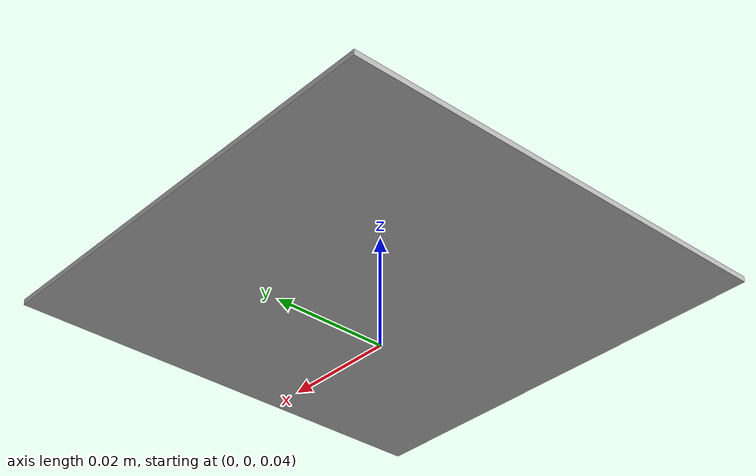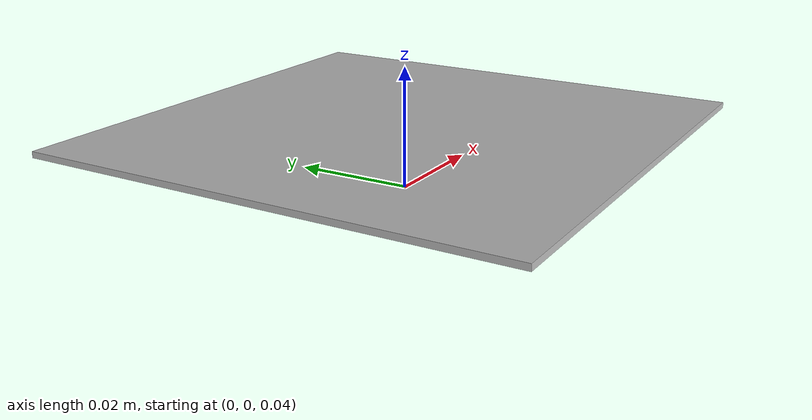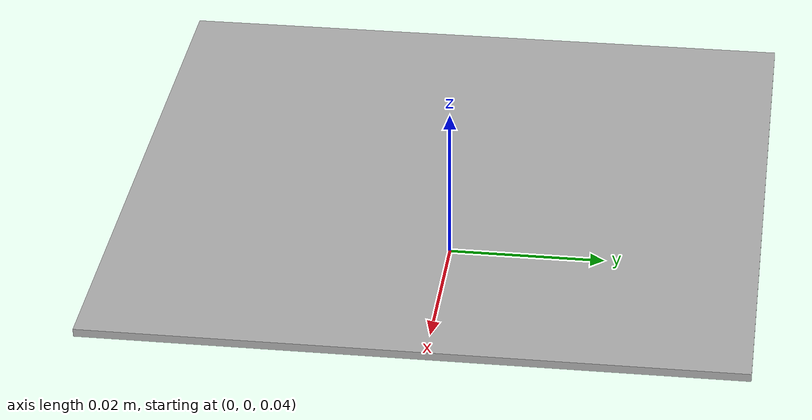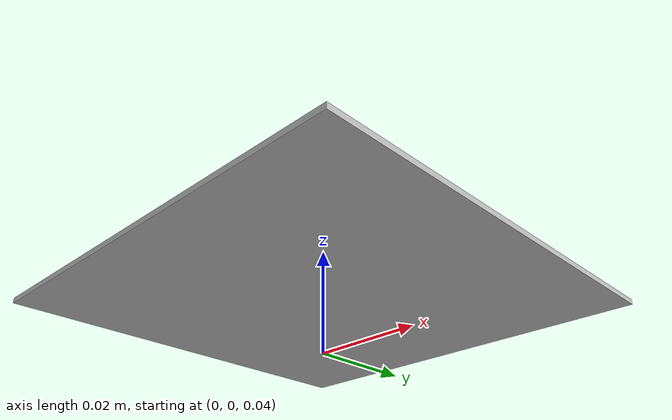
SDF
<?xml version="1.0" ?>
<sdf version="1.6">
  <model name="april_tag">
    <link name="link">
      <pose>0 0 0.05 0 0 0</pose>
      <collision name="collision">
        <geometry>
          <box>
            <size>0.08 0.08 0.001</size>
          </box>
        </geometry>
      </collision>
      <visual name="visual">
        <cast_shadows>false</cast_shadows>
        <geometry>
          <box>
            <size>0.08 0.08 0.001</size>
          </box>
        </geometry>
        <material>
          <script>
            <uri>model://april_tag/materials/scripts</uri>
            <uri>model://april_tag/materials/textures</uri>
            <name>april_tag/Diffuse</name>
          </script>
        </material>
      </visual>
    </link>
  </model>
</sdf>
